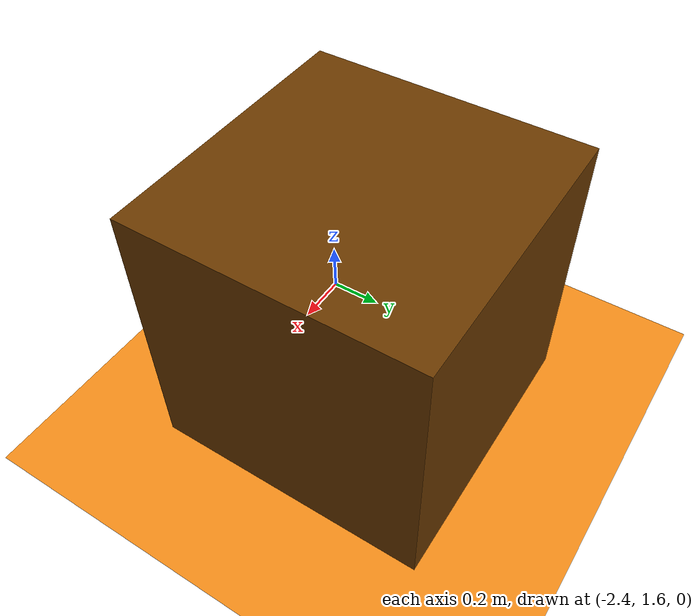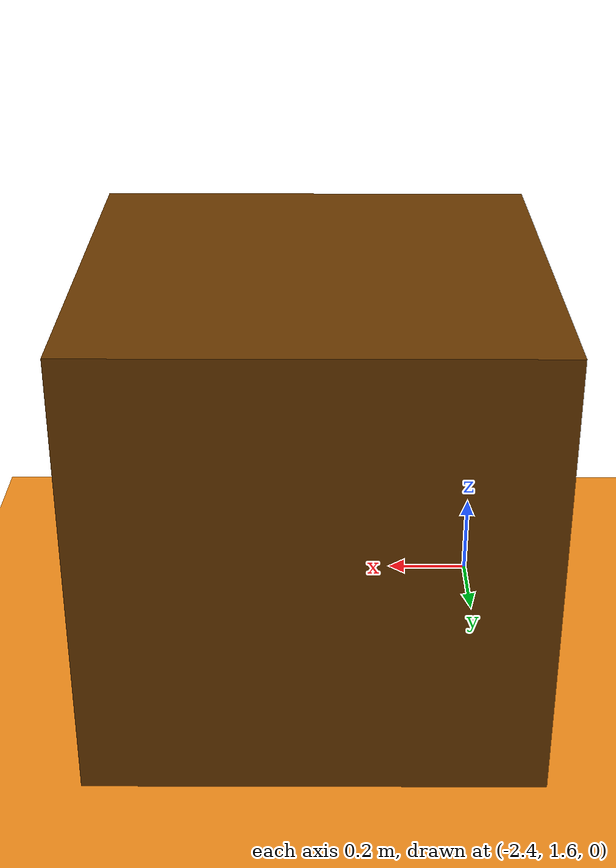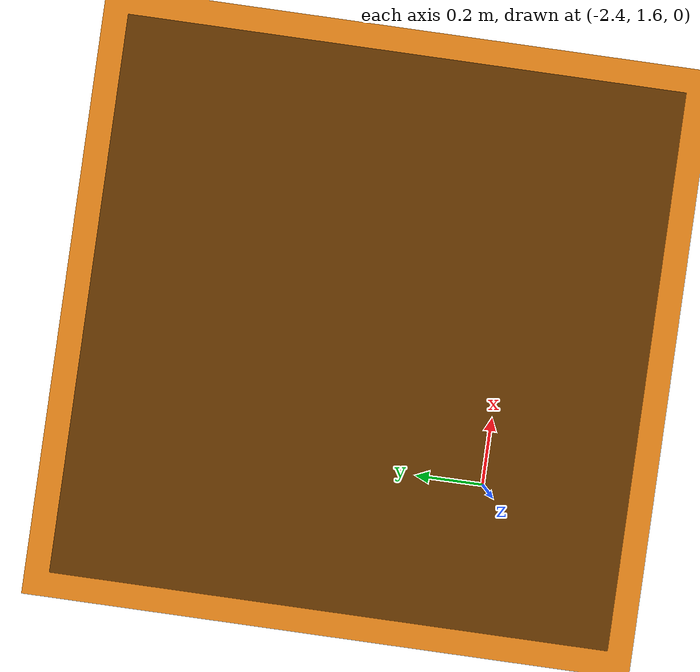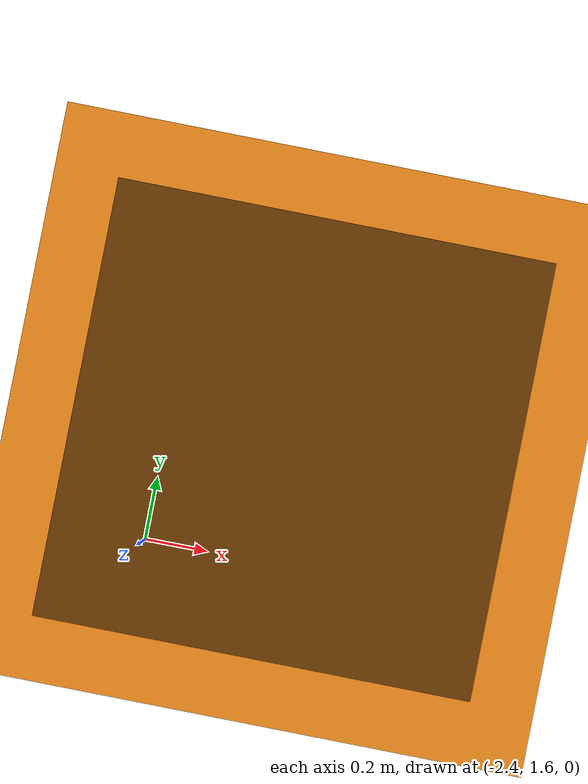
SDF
<?xml version="1.0" ?>
<sdf version="1.5">
    <world name="default">

        <physics type="ode">
        <max_step_size>0.0003</max_step_size>
        <real_time_factor>1</real_time_factor>
        <real_time_update_rate>3333</real_time_update_rate>
        <gravity>0 0 -9.81</gravity>
            <ode>
                <solver>
                <type>quick</type>
                <iters>50</iters>
                <sor>1.3</sor>
                </solver>
                <constraints>
                <cfm>0.0</cfm>
                <erp>0.2</erp>
                <contact_max_correcting_vel>10.0</contact_max_correcting_vel>
                <contact_surface_layer>0.001</contact_surface_layer>
                </constraints>
            </ode>
        </physics>

        <scene>
        <sky>
            <clouds>
                <speed>12</speed>
            </clouds>
        </sky>
        </scene>
        <!-- A global light source -->
        <include>
            <uri>model://sun</uri>
        </include>
        <!-- A ground plane -->
        <model name='ground_plane'>
            <static>1</static>
            <link name='link'>
              <collision name='collision'>
                <geometry>
                  <plane>
                    <normal>0 0 1</normal>
                    <size>100 100</size>
                  </plane>
                </geometry>
                <surface>
                  <contact>
                    <collide_bitmask>65535</collide_bitmask>
                    <ode/>
                  </contact>
                  <friction>
                    <ode>
                      <mu>100</mu>
                      <mu2>50</mu2>
                    </ode>
                    <torsional>
                      <ode/>
                    </torsional>
                  </friction>
                  <bounce/>
                </surface>
                <max_contacts>10</max_contacts>
              </collision>
              <visual name='visual'>
                <cast_shadows>0</cast_shadows>
                <geometry>
                  <plane>
                    <normal>0 0 1</normal>
                    <size>3000 20</size>
                  </plane>
                </geometry>
                <material>
                  <script>
                    <uri>file://media/materials/scripts/gazebo.material</uri>
                    <name>Gazebo/Orange</name>
                  </script>
                </material>
              </visual>
              <self_collide>0</self_collide>
              <enable_wind>0</enable_wind>
              <kinematic>0</kinematic>
            </link>
          </model>

        <!-- environment blocks, obstacles or stairs -->
        <model name="static_environment">
        <static>true</static>
            <link name="static_box">
                <pose>-2 2 0.5 0 0 0</pose>
                <collision name="static_box_collision">
                    <geometry>
                        <box>
                            <size>1 1 1</size>
                        </box>
                    </geometry>
                </collision>
                <visual name="static_box_visual">
                    <geometry>
                        <box>
                            <size>1 1 1</size>
                        </box>
                    </geometry>
                    <material>
                        <ambient>0.2 0.2 0.2 1.0</ambient>
                        <diffuse>.421 0.225 0.0 1.0</diffuse>
                    </material>
                </visual>
            </link>
        </model>

        <!-- Focus camera on the robot -->

        <gui fullscreen='0'>
            <camera name='user_camera'>
                <track_visual>
                    <name>a1_gazebo::base</name>
                    <static>true</static>
                    <use_model_frame>true</use_model_frame>
                    <xyz>0.5 -3 1</xyz>
                    <rpy>0 0.785 0</rpy>
                    <inherit_yaw>true</inherit_yaw>
                </track_visual>
            </camera>
          </gui>
    </world>
</sdf>
